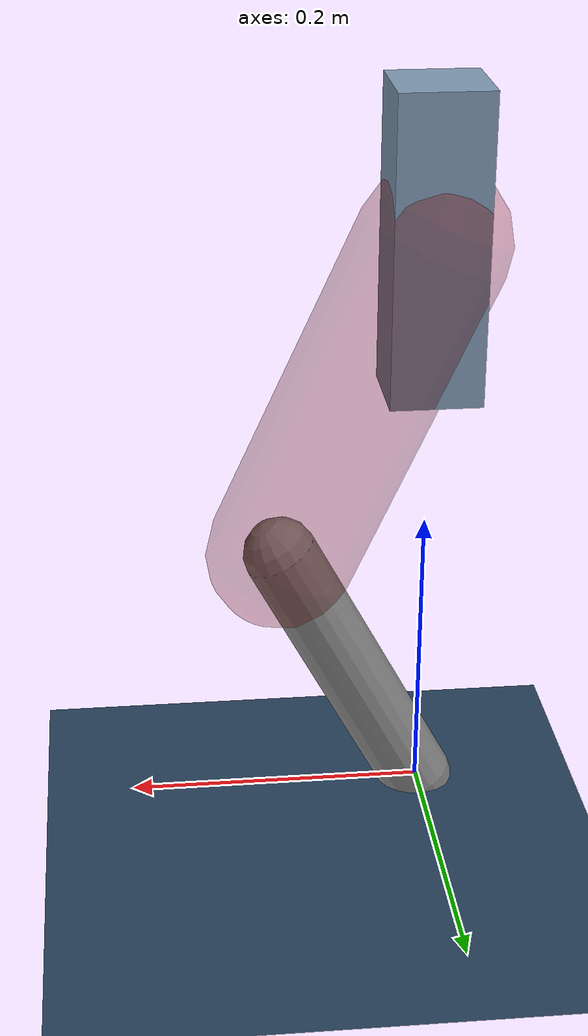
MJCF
<mujoco model="Hopper2D">
	<compiler inertiafromgeom="true" angle="radian" />
	<option timestep="0.001" integrator="implicit" cone="elliptic" solver="Newton" tolerance="1e-10" />

	<default>
		<geom contype="1" conaffinity="1" condim="3" friction="2 0.005 0.0001" solref="0.005 1" />
		<joint limited="true" damping="0.1" />
	</default>

	<asset>
		<texture name="skybox" type="skybox" builtin="gradient" rgb1=".4 .6 .8" rgb2="0 0 0" width="800" height="800" />
		<texture name="grid" type="2d" builtin="checker" rgb1=".1 .2 .3" rgb2=".2 .3 .4" width="300" height="300" mark="edge" markrgb=".2 .3 .4" />
		<material name="ground" texture="grid" texrepeat="1 1" texuniform="true" reflectance="0.1" />
		<material name="leg" rgba="0.5 0.6 0.7 1" />
	</asset>

	<worldbody>

		<geom name="floor" type="plane" size="5 5 0.25" material="ground" />

		<light directional="false" diffuse="0.8 0.8 0.8" specular="0.3 0.3 0.3" pos="0 0 2" dir="0 0 -1" />
		<light mode="targetbodycom" target="base" directional="false" diffuse="0.8 0.8 0.8" specular="0.3 0.3 0.3" pos="0 0 2" dir="0 0 -1" />

		<camera name="fixed" pos="0 -2 1" xyaxes="1 0 0 0 0 1" />
		<camera name="tracking" mode="trackcom" pos="0 -3 1" />

		<body name="root" pos="0 0 0.3927170430511632">
			<joint name="slide_x" type="slide" axis="1 0 0" range="-100 100" />
			<joint name="slide_z" type="slide" axis="0 0 1" range="0 10" />

			<body name="base" pos="0 0 0">
				<geom name="torso" type="box" size="0.03 0.03 0.1" mass="2.213" material="leg" />

				<body name="link1" pos="0 0 0" euler="0 1.1450547159329567 0">
					<joint type="hinge" axis="0 -1 0" pos="0 0 0" name="hinge1" limited="true" range="-3.14 3.14" stiffness="0" damping="0.1" />
					<geom name="thigh" type="capsule" fromto="0 0 0 0.2334837307899506 0 0" size="0.05" rgba="0.5 0 0 0.3" mass="0.8139093269748765" />

					<body name="link2" pos="0.2334837307899506 0 0" euler="0 0.9173727944370469 0">
						<joint type="hinge" axis="0 -1 0" pos="0 0 0" name="hinge2" limited="true" range="-3.14 3.14" stiffness="0" damping="0.1" />
						<geom name="shank" type="capsule" fromto="0 0 0 0.2042685190006367 0 0" size="0.025" mass="0.40451481520050936" />

					</body>
				</body>
			</body>
		</body>
	</worldbody>

	<actuator>
		<motor name="torque1" joint="hinge1" ctrlrange="-129.66346328872933 129.66346328872933" ctrllimited="true" gear="1" />
		<motor name="torque2" joint="hinge2" ctrlrange="-12.869738570846108 12.869738570846108" ctrllimited="true" gear="1" />
	</actuator>
</mujoco>
